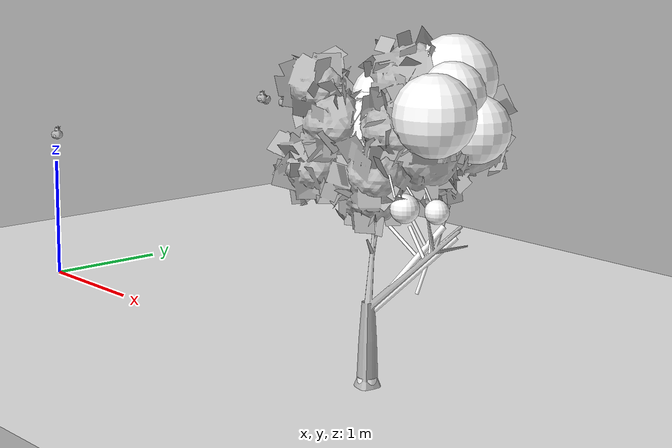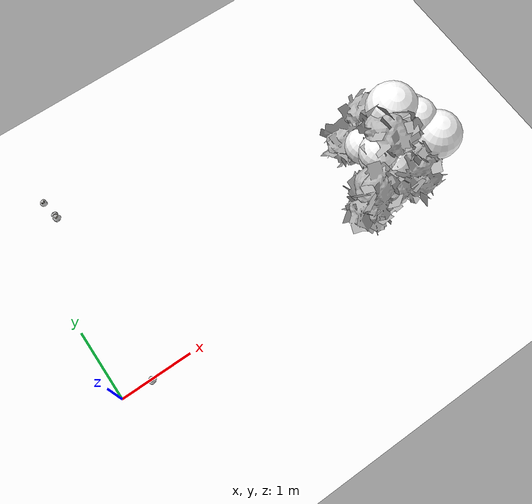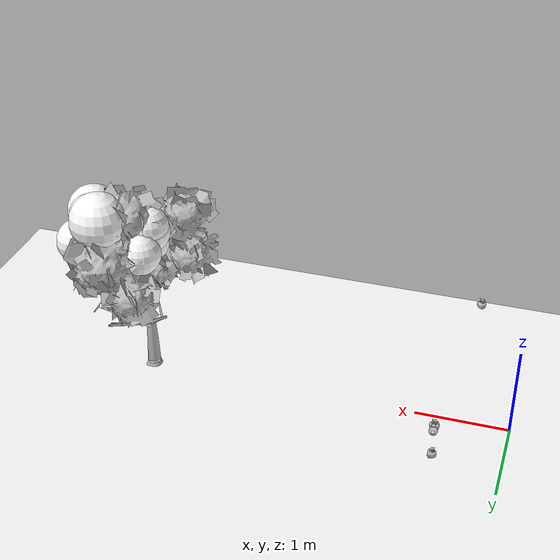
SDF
<sdf version="1.11">
 <world name="peach_orchard">
  <model name="ground">
   <static>true</static>
   <link name="link">
    <visual name="soil">
     <geometry><plane><normal>0 0 1</normal><size>32 22</size></plane></geometry>
     <material>
      <ambient>1 1 1 1</ambient>
      <diffuse>1 1 1 1</diffuse>
      <specular>0.1 0.1 0.1 1</specular>
      <pbr>
       <metal>
        <albedo_map>textures/soil_albedo.png</albedo_map>
        <normal_map type="tangent">textures/soil_normal.png</normal_map>
        <roughness>0.95</roughness>
        <metalness>0</metalness>
       </metal>
      </pbr>
     </material>
    </visual>
    <collision name="c_soil">
     <geometry><plane><normal>0 0 1</normal><size>32 22</size></plane></geometry>
    </collision>
   </link>
  </model>
  <model name="tree_r3_t3">
   <pose>4 0 0 0 0 0</pose>
   <static>true</static>
   <link name="link">
    <visual name="tree_mesh">
     <pose>0 0 0 0 0 -0.117006</pose>
     <geometry>
      <mesh><uri>model://peach_sim/meshes/peach_tree_b.glb</uri><scale>1.04149 1.04149 1.04149</scale></mesh>
     </geometry>
    </visual>
    <visual name="trunk_0">
     <pose>0 0 0.152556 0 0 0</pose>
     <geometry><cylinder><radius>0.0477858</radius><length>0.305113</length></cylinder></geometry>
     <material>
      <ambient>1 1 1 1</ambient>
      <diffuse>1 1 1 1</diffuse>
      <specular>0.1 0.1 0.1 1</specular>
      <pbr>
       <metal>
        <albedo_map>textures/bark_albedo.png</albedo_map>
        <normal_map type="tangent">textures/bark_normal.png</normal_map>
        <roughness>0.9</roughness>
        <metalness>0</metalness>
       </metal>
      </pbr>
     </material>
    </visual>
    <collision name="c_trunk_0">
     <pose>0 0 0.152556 0 0 0</pose>
     <geometry><cylinder><radius>0.0477858</radius><length>0.305113</length></cylinder></geometry>
    </collision>
    <visual name="trunk_1">
     <pose>0 0 0.429932 0 0 0</pose>
     <geometry><cylinder><radius>0.0344058</radius><length>0.249638</length></cylinder></geometry>
     <material>
      <ambient>1 1 1 1</ambient>
      <diffuse>1 1 1 1</diffuse>
      <specular>0.1 0.1 0.1 1</specular>
      <pbr>
       <metal>
        <albedo_map>textures/bark_albedo.png</albedo_map>
        <normal_map type="tangent">textures/bark_normal.png</normal_map>
        <roughness>0.9</roughness>
        <metalness>0</metalness>
       </metal>
      </pbr>
     </material>
    </visual>
    <collision name="c_trunk_1">
     <pose>0 0 0.429932 0 0 0</pose>
     <geometry><cylinder><radius>0.0344058</radius><length>0.249638</length></cylinder></geometry>
    </collision>
    <visual name="root_flare">
     <pose>0 0 0.035 0 0 0</pose>
     <geometry><cylinder><radius>0.0692894</radius><length>0.07</length></cylinder></geometry>
     <material>
      <ambient>1 1 1 1</ambient>
      <diffuse>1 1 1 1</diffuse>
      <specular>0.1 0.1 0.1 1</specular>
      <pbr>
       <metal>
        <albedo_map>textures/bark_albedo.png</albedo_map>
        <normal_map type="tangent">textures/bark_normal.png</normal_map>
        <roughness>0.95</roughness>
        <metalness>0</metalness>
       </metal>
      </pbr>
     </material>
    </visual>
    <visual name="scaffold_0">
     <pose>0.0417794 0.3149 0.780146 0 0.866733 1.43889</pose>
     <geometry><cylinder><radius>0.022</radius><length>0.833514</length></cylinder></geometry>
     <material>
      <ambient>1 1 1 1</ambient>
      <diffuse>1 1 1 1</diffuse>
      <specular>0.1 0.1 0.1 1</specular>
      <pbr>
       <metal>
        <albedo_map>textures/bark_albedo.png</albedo_map>
        <normal_map type="tangent">textures/bark_normal.png</normal_map>
        <roughness>0.9</roughness>
        <metalness>0</metalness>
       </metal>
      </pbr>
     </material>
    </visual>
    <collision name="c_scaffold_0">
     <pose>0.0417794 0.3149 0.780146 0 0.866733 1.43889</pose>
     <geometry><cylinder><radius>0.022</radius><length>0.833514</length></cylinder></geometry>
    </collision>
    <visual name="branchlet_0_0">
     <pose>0.0173213 0.448634 1.03504 0 0.482069 -2.50793</pose>
     <geometry><cylinder><radius>0.012</radius><length>0.25031</length></cylinder></geometry>
     <material>
      <ambient>1 1 1 1</ambient>
      <diffuse>1 1 1 1</diffuse>
      <specular>0.1 0.1 0.1 1</specular>
      <pbr>
       <metal>
        <albedo_map>textures/bark_albedo.png</albedo_map>
        <normal_map type="tangent">textures/bark_normal.png</normal_map>
        <roughness>0.9</roughness>
        <metalness>0</metalness>
       </metal>
      </pbr>
     </material>
    </visual>
    <visual name="branchlet_0_1">
     <pose>-0.0559915 0.376349 0.961718 0 0.861735 -2.83857</pose>
     <geometry><cylinder><radius>0.012</radius><length>0.305104</length></cylinder></geometry>
     <material>
      <ambient>1 1 1 1</ambient>
      <diffuse>1 1 1 1</diffuse>
      <specular>0.1 0.1 0.1 1</specular>
      <pbr>
       <metal>
        <albedo_map>textures/bark_albedo.png</albedo_map>
        <normal_map type="tangent">textures/bark_normal.png</normal_map>
        <roughness>0.9</roughness>
        <metalness>0</metalness>
       </metal>
      </pbr>
     </material>
    </visual>
    <visual name="scaffold_1">
     <pose>0.161313 0.255101 0.774016 0 0.852816 1.00693</pose>
     <geometry><cylinder><radius>0.022</radius><length>0.801517</length></cylinder></geometry>
     <material>
      <ambient>1 1 1 1</ambient>
      <diffuse>1 1 1 1</diffuse>
      <specular>0.1 0.1 0.1 1</specular>
      <pbr>
       <metal>
        <albedo_map>textures/bark_albedo.png</albedo_map>
        <normal_map type="tangent">textures/bark_normal.png</normal_map>
        <roughness>0.9</roughness>
        <metalness>0</metalness>
       </metal>
      </pbr>
     </material>
    </visual>
    <collision name="c_scaffold_1">
     <pose>0.161313 0.255101 0.774016 0 0.852816 1.00693</pose>
     <geometry><cylinder><radius>0.022</radius><length>0.801517</length></cylinder></geometry>
    </collision>
    <visual name="branchlet_1_0">
     <pose>0.172 0.415458 0.943402 0 0.876149 2.27504</pose>
     <geometry><cylinder><radius>0.012</radius><length>0.209099</length></cylinder></geometry>
     <material>
      <ambient>1 1 1 1</ambient>
      <diffuse>1 1 1 1</diffuse>
      <specular>0.1 0.1 0.1 1</specular>
      <pbr>
       <metal>
        <albedo_map>textures/bark_albedo.png</albedo_map>
        <normal_map type="tangent">textures/bark_normal.png</normal_map>
        <roughness>0.9</roughness>
        <metalness>0</metalness>
       </metal>
      </pbr>
     </material>
    </visual>
    <visual name="branchlet_1_1">
     <pose>0.21185 0.300972 0.76147 0 2.74928 -1.69851</pose>
     <geometry><cylinder><radius>0.012</radius><length>0.225335</length></cylinder></geometry>
     <material>
      <ambient>1 1 1 1</ambient>
      <diffuse>1 1 1 1</diffuse>
      <specular>0.1 0.1 0.1 1</specular>
      <pbr>
       <metal>
        <albedo_map>textures/bark_albedo.png</albedo_map>
        <normal_map type="tangent">textures/bark_normal.png</normal_map>
        <roughness>0.9</roughness>
        <metalness>0</metalness>
       </metal>
      </pbr>
     </material>
    </visual>
    <visual name="branchlet_1_2">
     <pose>0.12212 0.342675 0.972167 0 0.670773 3.07032</pose>
     <geometry><cylinder><radius>0.012</radius><length>0.291881</length></cylinder></geometry>
     <material>
      <ambient>1 1 1 1</ambient>
      <diffuse>1 1 1 1</diffuse>
      <specular>0.1 0.1 0.1 1</specular>
      <pbr>
       <metal>
        <albedo_map>textures/bark_albedo.png</albedo_map>
        <normal_map type="tangent">textures/bark_normal.png</normal_map>
        <roughness>0.9</roughness>
        <metalness>0</metalness>
       </metal>
      </pbr>
     </material>
    </visual>
    <visual name="canopy_0">
     <pose>-0.176181 0.264926 1.89662 0 0 0</pose>
     <geometry><sphere><radius>0.226775</radius></sphere></geometry>
     <material>
      <ambient>1 1 1 1</ambient>
      <diffuse>1 1 1 1</diffuse>
      <specular>0.1 0.1 0.1 1</specular>
      <pbr>
       <metal>
        <albedo_map>textures/leaf_albedo.png</albedo_map>
        <normal_map type="tangent">textures/leaf_normal.png</normal_map>
        <roughness>0.85</roughness>
        <metalness>0</metalness>
       </metal>
      </pbr>
     </material>
    </visual>
    <collision name="c_canopy_0">
     <pose>-0.176181 0.264926 1.89662 0 0 0</pose>
     <geometry><sphere><radius>0.226775</radius></sphere></geometry>
    </collision>
    <visual name="canopy_1">
     <pose>0.497611 0.0949716 1.93297 0 0 0</pose>
     <geometry><sphere><radius>0.278368</radius></sphere></geometry>
     <material>
      <ambient>1 1 1 1</ambient>
      <diffuse>1 1 1 1</diffuse>
      <specular>0.1 0.1 0.1 1</specular>
      <pbr>
       <metal>
        <albedo_map>textures/leaf_albedo.png</albedo_map>
        <normal_map type="tangent">textures/leaf_normal.png</normal_map>
        <roughness>0.85</roughness>
        <metalness>0</metalness>
       </metal>
      </pbr>
     </material>
    </visual>
    <collision name="c_canopy_1">
     <pose>0.497611 0.0949716 1.93297 0 0 0</pose>
     <geometry><sphere><radius>0.278368</radius></sphere></geometry>
    </collision>
    <visual name="canopy_2">
     <pose>-0.0807176 0.14953 1.73973 0 0 0</pose>
     <geometry><sphere><radius>0.26661</radius></sphere></geometry>
     <material>
      <ambient>1 1 1 1</ambient>
      <diffuse>1 1 1 1</diffuse>
      <specular>0.1 0.1 0.1 1</specular>
      <pbr>
       <metal>
        <albedo_map>textures/leaf_albedo.png</albedo_map>
        <normal_map type="tangent">textures/leaf_normal.png</normal_map>
        <roughness>0.85</roughness>
        <metalness>0</metalness>
       </metal>
      </pbr>
     </material>
    </visual>
    <collision name="c_canopy_2">
     <pose>-0.0807176 0.14953 1.73973 0 0 0</pose>
     <geometry><sphere><radius>0.26661</radius></sphere></geometry>
    </collision>
    <visual name="canopy_3">
     <pose>0.483609 0.509322 1.80141 0 0 0</pose>
     <geometry><sphere><radius>0.231739</radius></sphere></geometry>
     <material>
      <ambient>1 1 1 1</ambient>
      <diffuse>1 1 1 1</diffuse>
      <specular>0.1 0.1 0.1 1</specular>
      <pbr>
       <metal>
        <albedo_map>textures/leaf_albedo.png</albedo_map>
        <normal_map type="tangent">textures/leaf_normal.png</normal_map>
        <roughness>0.85</roughness>
        <metalness>0</metalness>
       </metal>
      </pbr>
     </material>
    </visual>
    <visual name="canopy_4">
     <pose>0.354017 0.354556 1.7758 0 0 0</pose>
     <geometry><sphere><radius>0.196232</radius></sphere></geometry>
     <material>
      <ambient>1 1 1 1</ambient>
      <diffuse>1 1 1 1</diffuse>
      <specular>0.1 0.1 0.1 1</specular>
      <pbr>
       <metal>
        <albedo_map>textures/leaf_albedo.png</albedo_map>
        <normal_map type="tangent">textures/leaf_normal.png</normal_map>
        <roughness>0.85</roughness>
        <metalness>0</metalness>
       </metal>
      </pbr>
     </material>
    </visual>
    <visual name="canopy_5">
     <pose>0.39717 0.360301 2.034 0 0 0</pose>
     <geometry><sphere><radius>0.224794</radius></sphere></geometry>
     <material>
      <ambient>1 1 1 1</ambient>
      <diffuse>1 1 1 1</diffuse>
      <specular>0.1 0.1 0.1 1</specular>
      <pbr>
       <metal>
        <albedo_map>textures/leaf_albedo.png</albedo_map>
        <normal_map type="tangent">textures/leaf_normal.png</normal_map>
        <roughness>0.85</roughness>
        <metalness>0</metalness>
       </metal>
      </pbr>
     </material>
    </visual>
    <visual name="canopy_6">
     <pose>-0.183715 0.282703 1.96403 0 0 0</pose>
     <geometry><sphere><radius>0.216346</radius></sphere></geometry>
     <material>
      <ambient>1 1 1 1</ambient>
      <diffuse>1 1 1 1</diffuse>
      <specular>0.1 0.1 0.1 1</specular>
      <pbr>
       <metal>
        <albedo_map>textures/leaf_albedo.png</albedo_map>
        <normal_map type="tangent">textures/leaf_normal.png</normal_map>
        <roughness>0.85</roughness>
        <metalness>0</metalness>
       </metal>
      </pbr>
     </material>
    </visual>
    <visual name="canopy_7">
     <pose>0.205288 0.577575 2.11325 0 0 0</pose>
     <geometry><sphere><radius>0.29623</radius></sphere></geometry>
     <material>
      <ambient>1 1 1 1</ambient>
      <diffuse>1 1 1 1</diffuse>
      <specular>0.1 0.1 0.1 1</specular>
      <pbr>
       <metal>
        <albedo_map>textures/leaf_albedo.png</albedo_map>
        <normal_map type="tangent">textures/leaf_normal.png</normal_map>
        <roughness>0.85</roughness>
        <metalness>0</metalness>
       </metal>
      </pbr>
     </material>
    </visual>
    <visual name="canopy_8">
     <pose>-0.174668 0.500832 1.75994 0 0 0</pose>
     <geometry><sphere><radius>0.21867</radius></sphere></geometry>
     <material>
      <ambient>1 1 1 1</ambient>
      <diffuse>1 1 1 1</diffuse>
      <specular>0.1 0.1 0.1 1</specular>
      <pbr>
       <metal>
        <albedo_map>textures/leaf_albedo.png</albedo_map>
        <normal_map type="tangent">textures/leaf_normal.png</normal_map>
        <roughness>0.85</roughness>
        <metalness>0</metalness>
       </metal>
      </pbr>
     </material>
    </visual>
    <visual name="foliage_0">
     <pose>0.305976 0.0322067 1.30131 0 0 0</pose>
     <geometry><sphere><radius>0.0985777</radius></sphere></geometry>
     <material>
      <ambient>1 1 1 1</ambient>
      <diffuse>1 1 1 1</diffuse>
      <specular>0.1 0.1 0.1 1</specular>
      <pbr>
       <metal>
        <albedo_map>textures/leaf_albedo.png</albedo_map>
        <normal_map type="tangent">textures/leaf_normal.png</normal_map>
        <roughness>0.85</roughness>
        <metalness>0</metalness>
       </metal>
      </pbr>
     </material>
    </visual>
    <visual name="foliage_4">
     <pose>0.610603 0.0229382 1.33145 0 0 0</pose>
     <geometry><sphere><radius>0.0809704</radius></sphere></geometry>
     <material>
      <ambient>1 1 1 1</ambient>
      <diffuse>1 1 1 1</diffuse>
      <specular>0.1 0.1 0.1 1</specular>
      <pbr>
       <metal>
        <albedo_map>textures/leaf_albedo.png</albedo_map>
        <normal_map type="tangent">textures/leaf_normal.png</normal_map>
        <roughness>0.85</roughness>
        <metalness>0</metalness>
       </metal>
      </pbr>
     </material>
    </visual>
    <visual name="twig_0">
     <pose>0.213463 0.0566669 1.53083 0 0.237358 -2.58728</pose>
     <geometry><cylinder><radius>0.007</radius><length>0.218795</length></cylinder></geometry>
     <material>
      <ambient>1 1 1 1</ambient>
      <diffuse>1 1 1 1</diffuse>
      <specular>0.1 0.1 0.1 1</specular>
      <pbr>
       <metal>
        <albedo_map>textures/bark_albedo.png</albedo_map>
        <normal_map type="tangent">textures/bark_normal.png</normal_map>
        <roughness>0.9</roughness>
        <metalness>0</metalness>
       </metal>
      </pbr>
     </material>
    </visual>
    <visual name="twig_1">
     <pose>0.168797 -0.0236031 1.48348 0 0.610944 -2.99627</pose>
     <geometry><cylinder><radius>0.007</radius><length>0.159923</length></cylinder></geometry>
     <material>
      <ambient>1 1 1 1</ambient>
      <diffuse>1 1 1 1</diffuse>
      <specular>0.1 0.1 0.1 1</specular>
      <pbr>
       <metal>
        <albedo_map>textures/bark_albedo.png</albedo_map>
        <normal_map type="tangent">textures/bark_normal.png</normal_map>
        <roughness>0.9</roughness>
        <metalness>0</metalness>
       </metal>
      </pbr>
     </material>
    </visual>
    <visual name="twig_2">
     <pose>0.190634 -0.102559 1.49092 0 0.529847 2.81805</pose>
     <geometry><cylinder><radius>0.007</radius><length>0.121767</length></cylinder></geometry>
     <material>
      <ambient>1 1 1 1</ambient>
      <diffuse>1 1 1 1</diffuse>
      <specular>0.1 0.1 0.1 1</specular>
      <pbr>
       <metal>
        <albedo_map>textures/bark_albedo.png</albedo_map>
        <normal_map type="tangent">textures/bark_normal.png</normal_map>
        <roughness>0.9</roughness>
        <metalness>0</metalness>
       </metal>
      </pbr>
     </material>
    </visual>
    <visual name="twig_3">
     <pose>0.400258 -0.178247 1.4938 0 0.421735 3.01961</pose>
     <geometry><cylinder><radius>0.007</radius><length>0.154242</length></cylinder></geometry>
     <material>
      <ambient>1 1 1 1</ambient>
      <diffuse>1 1 1 1</diffuse>
      <specular>0.1 0.1 0.1 1</specular>
      <pbr>
       <metal>
        <albedo_map>textures/bark_albedo.png</albedo_map>
        <normal_map type="tangent">textures/bark_normal.png</normal_map>
        <roughness>0.9</roughness>
        <metalness>0</metalness>
       </metal>
      </pbr>
     </material>
    </visual>
    <visual name="twig_4">
     <pose>0.532882 0.0201307 1.42736 0 0.418829 -2.53805</pose>
     <geometry><cylinder><radius>0.007</radius><length>0.112987</length></cylinder></geometry>
     <material>
      <ambient>1 1 1 1</ambient>
      <diffuse>1 1 1 1</diffuse>
      <specular>0.1 0.1 0.1 1</specular>
      <pbr>
       <metal>
        <albedo_map>textures/bark_albedo.png</albedo_map>
        <normal_map type="tangent">textures/bark_normal.png</normal_map>
        <roughness>0.9</roughness>
        <metalness>0</metalness>
       </metal>
      </pbr>
     </material>
    </visual>
    <visual name="twig_5">
     <pose>0.296349 0.0865137 1.4058 0 0.623033 -2.7596</pose>
     <geometry><cylinder><radius>0.007</radius><length>0.195061</length></cylinder></geometry>
     <material>
      <ambient>1 1 1 1</ambient>
      <diffuse>1 1 1 1</diffuse>
      <specular>0.1 0.1 0.1 1</specular>
      <pbr>
       <metal>
        <albedo_map>textures/bark_albedo.png</albedo_map>
        <normal_map type="tangent">textures/bark_normal.png</normal_map>
        <roughness>0.9</roughness>
        <metalness>0</metalness>
       </metal>
      </pbr>
     </material>
    </visual>
    <visual name="twig_6">
     <pose>0.269393 0.255064 1.41553 0 0.214285 2.27201</pose>
     <geometry><cylinder><radius>0.007</radius><length>0.170646</length></cylinder></geometry>
     <material>
      <ambient>1 1 1 1</ambient>
      <diffuse>1 1 1 1</diffuse>
      <specular>0.1 0.1 0.1 1</specular>
      <pbr>
       <metal>
        <albedo_map>textures/bark_albedo.png</albedo_map>
        <normal_map type="tangent">textures/bark_normal.png</normal_map>
        <roughness>0.9</roughness>
        <metalness>0</metalness>
       </metal>
      </pbr>
     </material>
    </visual>
   </link>
  </model>
  <model name="peach_tree_r2_t3_02">
   <pose>0.465721 -0.268061 1.29247 0 0.0300177 1.9663</pose>
   <static>true</static>
   <link name="bag">
    <visual name="bag_mesh">
     <pose>0 0 0.0450802 0 0 0</pose>
     <geometry>
      <mesh><uri>model://peach_sim/meshes/bagged_peach.glb</uri><scale>1.03773 1.28256 1.02455</scale></mesh>
     </geometry>
    </visual>
    <visual name="body">
     <pose>0 0 0.0270802 0 0 0</pose>
     <geometry><ellipsoid><radii>0.0389148 0.0333466 0.0292466</radii></ellipsoid></geometry>
     <material>
      <ambient>1 1 1 1</ambient>
      <diffuse>1 1 1 1</diffuse>
      <specular>0.1 0.1 0.1 1</specular>
      <pbr>
       <metal>
        <albedo_map>textures/paper_bag_albedo.png</albedo_map>
        <normal_map type="tangent">textures/paper_bag_normal.png</normal_map>
        <roughness>0.72</roughness>
        <metalness>0</metalness>
       </metal>
      </pbr>
     </material>
    </visual>
    <visual name="bottom_fold">
     <pose>0 0 0.012 0 0 0.35</pose>
     <geometry><box><size>0.060318 0.0383486 0.022</size></box></geometry>
     <material>
      <ambient>1 1 1 1</ambient>
      <diffuse>1 1 1 1</diffuse>
      <specular>0.1 0.1 0.1 1</specular>
      <pbr>
       <metal>
        <albedo_map>textures/paper_bag_albedo.png</albedo_map>
        <normal_map type="tangent">textures/paper_bag_normal.png</normal_map>
        <roughness>0.8</roughness>
        <metalness>0</metalness>
       </metal>
      </pbr>
     </material>
    </visual>
    <visual name="fruit">
     <pose>0 0 0.0195655 0 0 0</pose>
     <geometry><sphere><radius>0.0265881</radius></sphere></geometry>
     <material>
      <ambient>1 1 1 1</ambient>
      <diffuse>1 1 1 1</diffuse>
      <specular>0.1 0.1 0.1 1</specular>
      <pbr>
       <metal>
        <albedo_map>textures/fruit_skin_albedo.png</albedo_map>
        <normal_map type="tangent">textures/fruit_skin_normal.png</normal_map>
        <roughness>0.55</roughness>
        <metalness>0</metalness>
       </metal>
      </pbr>
     </material>
    </visual>
    <visual name="neck">
     <pose>0 0 0.0631603 0 0 0</pose>
     <geometry><cylinder><radius>0.013</radius><length>0.018</length></cylinder></geometry>
     <material>
      <ambient>1 1 1 1</ambient>
      <diffuse>1 1 1 1</diffuse>
      <specular>0.1 0.1 0.1 1</specular>
      <pbr>
       <metal>
        <albedo_map>textures/paper_bag_albedo.png</albedo_map>
        <normal_map type="tangent">textures/paper_bag_normal.png</normal_map>
        <roughness>0.75</roughness>
        <metalness>0</metalness>
       </metal>
      </pbr>
     </material>
    </visual>
    <visual name="gather">
     <pose>0 0 0.0441603 0 0 0</pose>
     <geometry><cylinder><radius>0.019</radius><length>0.02</length></cylinder></geometry>
     <material>
      <ambient>1 1 1 1</ambient>
      <diffuse>1 1 1 1</diffuse>
      <specular>0.1 0.1 0.1 1</specular>
      <pbr>
       <metal>
        <albedo_map>textures/paper_bag_albedo.png</albedo_map>
        <normal_map type="tangent">textures/paper_bag_normal.png</normal_map>
        <roughness>0.8</roughness>
        <metalness>0</metalness>
       </metal>
      </pbr>
     </material>
    </visual>
    <visual name="inner_paper">
     <pose>0 0 0.0681603 0 0 0</pose>
     <geometry><cylinder><radius>0.01</radius><length>0.008</length></cylinder></geometry>
     <material>
      <ambient>0.180392 0.14902 0.133333 1</ambient>
      <diffuse>0.180392 0.14902 0.133333 1</diffuse>
      <specular>0.1 0.1 0.1 1</specular>
     </material>
    </visual>
    <visual name="wire_0">
     <pose>0 0 0.0581603 0 0 0</pose>
     <geometry><cylinder><radius>0.0205</radius><length>0.0035</length></cylinder></geometry>
     <material>
      <ambient>0.25 0.25 0.25 1</ambient>
      <diffuse>0.25 0.25 0.25 1</diffuse>
      <specular>0.1 0.1 0.1 1</specular>
     </material>
    </visual>
    <visual name="wire_1">
     <pose>0 0 0.0651603 0 0 0</pose>
     <geometry><cylinder><radius>0.0205</radius><length>0.0035</length></cylinder></geometry>
     <material>
      <ambient>0.25 0.25 0.25 1</ambient>
      <diffuse>0.25 0.25 0.25 1</diffuse>
      <specular>0.1 0.1 0.1 1</specular>
     </material>
    </visual>
    <visual name="wire_tail">
     <pose>0.01 0 0.0661603 0 0.521618 0</pose>
     <geometry><cylinder><radius>0.0012</radius><length>0.026</length></cylinder></geometry>
     <material>
      <ambient>0.25 0.25 0.25 1</ambient>
      <diffuse>0.25 0.25 0.25 1</diffuse>
      <specular>0.1 0.1 0.1 1</specular>
     </material>
    </visual>
    <collision name="c_body">
     <pose>0 0 0.0270802 0 0 0</pose>
     <geometry><cylinder><radius>0.0389148</radius><length>0.0541603</length></cylinder></geometry>
    </collision>
   </link>
  </model>
  <model name="peach_tree_r2_t4_00">
   <pose>0.517819 2.13843 1.34461 0 0.0255121 -3.05894</pose>
   <static>true</static>
   <link name="bag">
    <visual name="bag_mesh">
     <pose>0 0 0.0437034 0 0 -0</pose>
     <geometry>
      <mesh><uri>model://peach_sim/meshes/bagged_peach.glb</uri><scale>0.972916 1.14003 0.993259</scale></mesh>
     </geometry>
    </visual>
    <visual name="body">
     <pose>0 0 0.0257034 0 0 0</pose>
     <geometry><ellipsoid><radii>0.0364843 0.0296408 0.0277597</radii></ellipsoid></geometry>
     <material>
      <ambient>1 1 1 1</ambient>
      <diffuse>1 1 1 1</diffuse>
      <specular>0.1 0.1 0.1 1</specular>
      <pbr>
       <metal>
        <albedo_map>textures/paper_bag_albedo.png</albedo_map>
        <normal_map type="tangent">textures/paper_bag_normal.png</normal_map>
        <roughness>0.72</roughness>
        <metalness>0</metalness>
       </metal>
      </pbr>
     </material>
    </visual>
    <visual name="bottom_fold">
     <pose>0 0 0.012 0 0 0.35</pose>
     <geometry><box><size>0.0565507 0.0340869 0.022</size></box></geometry>
     <material>
      <ambient>1 1 1 1</ambient>
      <diffuse>1 1 1 1</diffuse>
      <specular>0.1 0.1 0.1 1</specular>
      <pbr>
       <metal>
        <albedo_map>textures/paper_bag_albedo.png</albedo_map>
        <normal_map type="tangent">textures/paper_bag_normal.png</normal_map>
        <roughness>0.8</roughness>
        <metalness>0</metalness>
       </metal>
      </pbr>
     </material>
    </visual>
    <visual name="fruit">
     <pose>0 0 0.0205285 0 0 0</pose>
     <geometry><sphere><radius>0.0275897</radius></sphere></geometry>
     <material>
      <ambient>1 1 1 1</ambient>
      <diffuse>1 1 1 1</diffuse>
      <specular>0.1 0.1 0.1 1</specular>
      <pbr>
       <metal>
        <albedo_map>textures/fruit_skin_albedo.png</albedo_map>
        <normal_map type="tangent">textures/fruit_skin_normal.png</normal_map>
        <roughness>0.55</roughness>
        <metalness>0</metalness>
       </metal>
      </pbr>
     </material>
    </visual>
    <visual name="neck">
     <pose>0 0 0.0604068 0 0 0</pose>
     <geometry><cylinder><radius>0.013</radius><length>0.018</length></cylinder></geometry>
     <material>
      <ambient>1 1 1 1</ambient>
      <diffuse>1 1 1 1</diffuse>
      <specular>0.1 0.1 0.1 1</specular>
      <pbr>
       <metal>
        <albedo_map>textures/paper_bag_albedo.png</albedo_map>
        <normal_map type="tangent">textures/paper_bag_normal.png</normal_map>
        <roughness>0.75</roughness>
        <metalness>0</metalness>
       </metal>
      </pbr>
     </material>
    </visual>
    <visual name="gather">
     <pose>0 0 0.0414068 0 0 0</pose>
     <geometry><cylinder><radius>0.019</radius><length>0.02</length></cylinder></geometry>
     <material>
      <ambient>1 1 1 1</ambient>
      <diffuse>1 1 1 1</diffuse>
      <specular>0.1 0.1 0.1 1</specular>
      <pbr>
       <metal>
        <albedo_map>textures/paper_bag_albedo.png</albedo_map>
        <normal_map type="tangent">textures/paper_bag_normal.png</normal_map>
        <roughness>0.8</roughness>
        <metalness>0</metalness>
       </metal>
      </pbr>
     </material>
    </visual>
    <visual name="inner_paper">
     <pose>0 0 0.0654068 0 0 0</pose>
     <geometry><cylinder><radius>0.01</radius><length>0.008</length></cylinder></geometry>
     <material>
      <ambient>0.180392 0.14902 0.133333 1</ambient>
      <diffuse>0.180392 0.14902 0.133333 1</diffuse>
      <specular>0.1 0.1 0.1 1</specular>
     </material>
    </visual>
    <visual name="wire_0">
     <pose>0 0 0.0554068 0 0 0</pose>
     <geometry><cylinder><radius>0.0205</radius><length>0.0035</length></cylinder></geometry>
     <material>
      <ambient>0.25 0.25 0.25 1</ambient>
      <diffuse>0.25 0.25 0.25 1</diffuse>
      <specular>0.1 0.1 0.1 1</specular>
     </material>
    </visual>
    <visual name="wire_1">
     <pose>0 0 0.0624068 0 0 0</pose>
     <geometry><cylinder><radius>0.0205</radius><length>0.0035</length></cylinder></geometry>
     <material>
      <ambient>0.25 0.25 0.25 1</ambient>
      <diffuse>0.25 0.25 0.25 1</diffuse>
      <specular>0.1 0.1 0.1 1</specular>
     </material>
    </visual>
    <visual name="wire_tail">
     <pose>0.01 0 0.0634068 0 0.521618 0</pose>
     <geometry><cylinder><radius>0.0012</radius><length>0.026</length></cylinder></geometry>
     <material>
      <ambient>0.25 0.25 0.25 1</ambient>
      <diffuse>0.25 0.25 0.25 1</diffuse>
      <specular>0.1 0.1 0.1 1</specular>
     </material>
    </visual>
    <collision name="c_body">
     <pose>0 0 0.0257034 0 0 0</pose>
     <geometry><cylinder><radius>0.0364843</radius><length>0.0514068</length></cylinder></geometry>
    </collision>
   </link>
  </model>
  <model name="peach_tree_r2_t4_01">
   <pose>0.547163 1.92975 1.40051 0 0.599884 -1.38839</pose>
   <static>true</static>
   <link name="bag">
    <visual name="bag_mesh">
     <pose>0 0 0.0473878 0 0 -0</pose>
     <geometry>
      <mesh><uri>model://peach_sim/meshes/bagged_peach.glb</uri><scale>0.92257 1.07184 1.077</scale></mesh>
     </geometry>
    </visual>
    <visual name="body">
     <pose>0 0 0.0293878 0 0 0</pose>
     <geometry><ellipsoid><radii>0.0345964 0.0278678 0.0317389</radii></ellipsoid></geometry>
     <material>
      <ambient>1 1 1 1</ambient>
      <diffuse>1 1 1 1</diffuse>
      <specular>0.1 0.1 0.1 1</specular>
      <pbr>
       <metal>
        <albedo_map>textures/paper_bag_albedo.png</albedo_map>
        <normal_map type="tangent">textures/paper_bag_normal.png</normal_map>
        <roughness>0.72</roughness>
        <metalness>0</metalness>
       </metal>
      </pbr>
     </material>
    </visual>
    <visual name="bottom_fold">
     <pose>0 0 0.012 0 0 0.35</pose>
     <geometry><box><size>0.0536244 0.0320479 0.022</size></box></geometry>
     <material>
      <ambient>1 1 1 1</ambient>
      <diffuse>1 1 1 1</diffuse>
      <specular>0.1 0.1 0.1 1</specular>
      <pbr>
       <metal>
        <albedo_map>textures/paper_bag_albedo.png</albedo_map>
        <normal_map type="tangent">textures/paper_bag_normal.png</normal_map>
        <roughness>0.8</roughness>
        <metalness>0</metalness>
       </metal>
      </pbr>
     </material>
    </visual>
    <visual name="fruit">
     <pose>0 0 0.0170609 0 0 0</pose>
     <geometry><sphere><radius>0.0239833</radius></sphere></geometry>
     <material>
      <ambient>1 1 1 1</ambient>
      <diffuse>1 1 1 1</diffuse>
      <specular>0.1 0.1 0.1 1</specular>
      <pbr>
       <metal>
        <albedo_map>textures/fruit_skin_albedo.png</albedo_map>
        <normal_map type="tangent">textures/fruit_skin_normal.png</normal_map>
        <roughness>0.55</roughness>
        <metalness>0</metalness>
       </metal>
      </pbr>
     </material>
    </visual>
    <visual name="neck">
     <pose>0 0 0.0677757 0 0 0</pose>
     <geometry><cylinder><radius>0.013</radius><length>0.018</length></cylinder></geometry>
     <material>
      <ambient>1 1 1 1</ambient>
      <diffuse>1 1 1 1</diffuse>
      <specular>0.1 0.1 0.1 1</specular>
      <pbr>
       <metal>
        <albedo_map>textures/paper_bag_albedo.png</albedo_map>
        <normal_map type="tangent">textures/paper_bag_normal.png</normal_map>
        <roughness>0.75</roughness>
        <metalness>0</metalness>
       </metal>
      </pbr>
     </material>
    </visual>
    <visual name="gather">
     <pose>0 0 0.0487757 0 0 0</pose>
     <geometry><cylinder><radius>0.019</radius><length>0.02</length></cylinder></geometry>
     <material>
      <ambient>1 1 1 1</ambient>
      <diffuse>1 1 1 1</diffuse>
      <specular>0.1 0.1 0.1 1</specular>
      <pbr>
       <metal>
        <albedo_map>textures/paper_bag_albedo.png</albedo_map>
        <normal_map type="tangent">textures/paper_bag_normal.png</normal_map>
        <roughness>0.8</roughness>
        <metalness>0</metalness>
       </metal>
      </pbr>
     </material>
    </visual>
    <visual name="inner_paper">
     <pose>0 0 0.0727757 0 0 0</pose>
     <geometry><cylinder><radius>0.01</radius><length>0.008</length></cylinder></geometry>
     <material>
      <ambient>0.180392 0.14902 0.133333 1</ambient>
      <diffuse>0.180392 0.14902 0.133333 1</diffuse>
      <specular>0.1 0.1 0.1 1</specular>
     </material>
    </visual>
    <visual name="wire_0">
     <pose>0 0 0.0627757 0 0 0</pose>
     <geometry><cylinder><radius>0.0205</radius><length>0.0035</length></cylinder></geometry>
     <material>
      <ambient>0.25 0.25 0.25 1</ambient>
      <diffuse>0.25 0.25 0.25 1</diffuse>
      <specular>0.1 0.1 0.1 1</specular>
     </material>
    </visual>
    <visual name="wire_1">
     <pose>0 0 0.0697757 0 0 0</pose>
     <geometry><cylinder><radius>0.0205</radius><length>0.0035</length></cylinder></geometry>
     <material>
      <ambient>0.25 0.25 0.25 1</ambient>
      <diffuse>0.25 0.25 0.25 1</diffuse>
      <specular>0.1 0.1 0.1 1</specular>
     </material>
    </visual>
    <visual name="wire_tail">
     <pose>0.01 0 0.0707757 0 0.521618 0</pose>
     <geometry><cylinder><radius>0.0012</radius><length>0.026</length></cylinder></geometry>
     <material>
      <ambient>0.25 0.25 0.25 1</ambient>
      <diffuse>0.25 0.25 0.25 1</diffuse>
      <specular>0.1 0.1 0.1 1</specular>
     </material>
    </visual>
    <collision name="c_body">
     <pose>0 0 0.0293878 0 0 0</pose>
     <geometry><cylinder><radius>0.0345964</radius><length>0.0587757</length></cylinder></geometry>
    </collision>
   </link>
  </model>
  <model name="peach_tree_r2_t4_02">
   <pose>0.55 1.86349 1.41229 0 0.000224368 2.00364</pose>
   <static>true</static>
   <link name="bag">
    <visual name="bag_mesh">
     <pose>0 0 0.0456934 0 0 0</pose>
     <geometry>
      <mesh><uri>model://peach_sim/meshes/bagged_peach.glb</uri><scale>1.073 1.2332 1.03849</scale></mesh>
     </geometry>
    </visual>
    <visual name="body">
     <pose>0 0 0.0276934 0 0 0</pose>
     <geometry><ellipsoid><radii>0.0402375 0.0320631 0.0299088</radii></ellipsoid></geometry>
     <material>
      <ambient>1 1 1 1</ambient>
      <diffuse>1 1 1 1</diffuse>
      <specular>0.1 0.1 0.1 1</specular>
      <pbr>
       <metal>
        <albedo_map>textures/paper_bag_albedo.png</albedo_map>
        <normal_map type="tangent">textures/paper_bag_normal.png</normal_map>
        <roughness>0.72</roughness>
        <metalness>0</metalness>
       </metal>
      </pbr>
     </material>
    </visual>
    <visual name="bottom_fold">
     <pose>0 0 0.012 0 0 0.35</pose>
     <geometry><box><size>0.0623681 0.0368726 0.022</size></box></geometry>
     <material>
      <ambient>1 1 1 1</ambient>
      <diffuse>1 1 1 1</diffuse>
      <specular>0.1 0.1 0.1 1</specular>
      <pbr>
       <metal>
        <albedo_map>textures/paper_bag_albedo.png</albedo_map>
        <normal_map type="tangent">textures/paper_bag_normal.png</normal_map>
        <roughness>0.8</roughness>
        <metalness>0</metalness>
       </metal>
      </pbr>
     </material>
    </visual>
    <visual name="fruit">
     <pose>0 0 0.0218928 0 0 0</pose>
     <geometry><sphere><radius>0.0290085</radius></sphere></geometry>
     <material>
      <ambient>1 1 1 1</ambient>
      <diffuse>1 1 1 1</diffuse>
      <specular>0.1 0.1 0.1 1</specular>
      <pbr>
       <metal>
        <albedo_map>textures/fruit_skin_albedo.png</albedo_map>
        <normal_map type="tangent">textures/fruit_skin_normal.png</normal_map>
        <roughness>0.55</roughness>
        <metalness>0</metalness>
       </metal>
      </pbr>
     </material>
    </visual>
    <visual name="neck">
     <pose>0 0 0.0643868 0 0 0</pose>
     <geometry><cylinder><radius>0.013</radius><length>0.018</length></cylinder></geometry>
     <material>
      <ambient>1 1 1 1</ambient>
      <diffuse>1 1 1 1</diffuse>
      <specular>0.1 0.1 0.1 1</specular>
      <pbr>
       <metal>
        <albedo_map>textures/paper_bag_albedo.png</albedo_map>
        <normal_map type="tangent">textures/paper_bag_normal.png</normal_map>
        <roughness>0.75</roughness>
        <metalness>0</metalness>
       </metal>
      </pbr>
     </material>
    </visual>
    <visual name="gather">
     <pose>0 0 0.0453868 0 0 0</pose>
     <geometry><cylinder><radius>0.019</radius><length>0.02</length></cylinder></geometry>
     <material>
      <ambient>1 1 1 1</ambient>
      <diffuse>1 1 1 1</diffuse>
      <specular>0.1 0.1 0.1 1</specular>
      <pbr>
       <metal>
        <albedo_map>textures/paper_bag_albedo.png</albedo_map>
        <normal_map type="tangent">textures/paper_bag_normal.png</normal_map>
        <roughness>0.8</roughness>
        <metalness>0</metalness>
       </metal>
      </pbr>
     </material>
    </visual>
    <visual name="inner_paper">
     <pose>0 0 0.0693868 0 0 0</pose>
     <geometry><cylinder><radius>0.01</radius><length>0.008</length></cylinder></geometry>
     <material>
      <ambient>0.180392 0.14902 0.133333 1</ambient>
      <diffuse>0.180392 0.14902 0.133333 1</diffuse>
      <specular>0.1 0.1 0.1 1</specular>
     </material>
    </visual>
    <visual name="wire_0">
     <pose>0 0 0.0593868 0 0 0</pose>
     <geometry><cylinder><radius>0.0205</radius><length>0.0035</length></cylinder></geometry>
     <material>
      <ambient>0.25 0.25 0.25 1</ambient>
      <diffuse>0.25 0.25 0.25 1</diffuse>
      <specular>0.1 0.1 0.1 1</specular>
     </material>
    </visual>
    <visual name="wire_1">
     <pose>0 0 0.0663868 0 0 0</pose>
     <geometry><cylinder><radius>0.0205</radius><length>0.0035</length></cylinder></geometry>
     <material>
      <ambient>0.25 0.25 0.25 1</ambient>
      <diffuse>0.25 0.25 0.25 1</diffuse>
      <specular>0.1 0.1 0.1 1</specular>
     </material>
    </visual>
    <visual name="wire_tail">
     <pose>0.01 0 0.0673868 0 0.521618 0</pose>
     <geometry><cylinder><radius>0.0012</radius><length>0.026</length></cylinder></geometry>
     <material>
      <ambient>0.25 0.25 0.25 1</ambient>
      <diffuse>0.25 0.25 0.25 1</diffuse>
      <specular>0.1 0.1 0.1 1</specular>
     </material>
    </visual>
    <collision name="c_body">
     <pose>0 0 0.0276934 0 0 0</pose>
     <geometry><cylinder><radius>0.0402375</radius><length>0.0553868</length></cylinder></geometry>
    </collision>
   </link>
  </model>
 </world>
</sdf>
